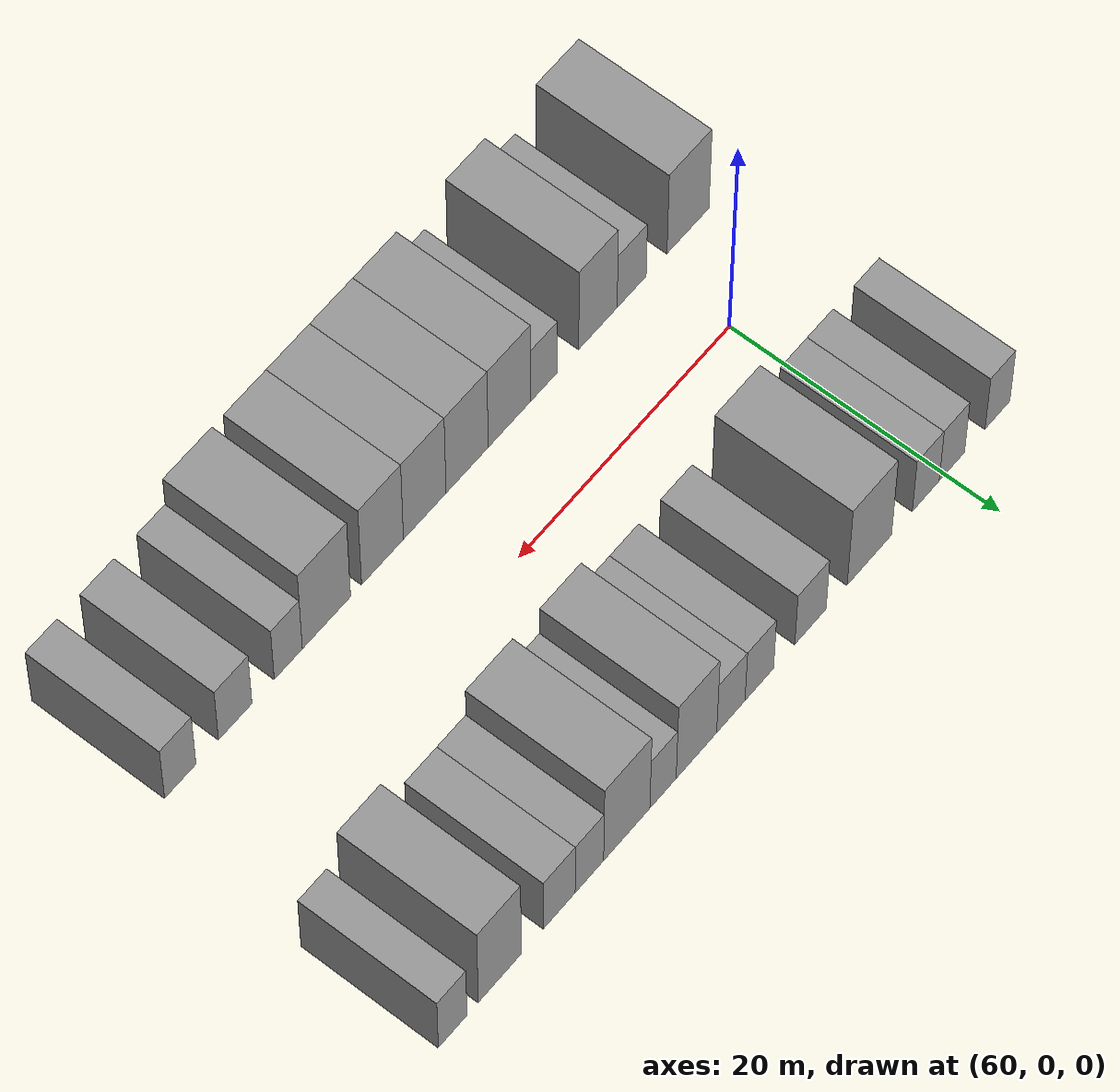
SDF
<sdf version="1.6">
 <world name="default">
  <model name="building_13">
   <static>1</static>
   <pose>54.9431 11.0000 0 0.000000 0.000000 1.570796</pose>
   <link name="link">
    <pose>0 0 3.00 0 0 0</pose>
    <collision name="collision"><geometry><box><size>10.0000 2.4248 6.0000</size></box></geometry></collision>
    <visual name="visual">
     <cast_shadows>0</cast_shadows>
     <geometry><box><size>10.0000 2.4248 6.0000</size></box></geometry>
     <material>
      <script>
       <uri>model://grey_wall/materials/scripts</uri>
       <uri>model://grey_wall/materials/textures</uri>
       <name>vrc/grey_wall</name>
      </script>
     </material>
    </visual>
   </link>
  </model>
  <model name="building_14">
   <static>1</static>
   <pose>59.3850 11.0000 0 0.000000 0.000000 1.570796</pose>
   <link name="link">
    <pose>0 0 3.00 0 0 0</pose>
    <collision name="collision"><geometry><box><size>10.0000 2.4591 6.0000</size></box></geometry></collision>
    <visual name="visual">
     <cast_shadows>0</cast_shadows>
     <geometry><box><size>10.0000 2.4591 6.0000</size></box></geometry>
     <material>
      <script>
       <uri>model://grey_wall/materials/scripts</uri>
       <uri>model://grey_wall/materials/textures</uri>
       <name>vrc/grey_wall</name>
      </script>
     </material>
    </visual>
   </link>
  </model>
  <model name="building_15">
   <static>1</static>
   <pose>61.9111 11.0000 0 0.000000 0.000000 1.570796</pose>
   <link name="link">
    <pose>0 0 3.00 0 0 0</pose>
    <collision name="collision"><geometry><box><size>10.0000 2.5931 6.0000</size></box></geometry></collision>
    <visual name="visual">
     <cast_shadows>0</cast_shadows>
     <geometry><box><size>10.0000 2.5931 6.0000</size></box></geometry>
     <material>
      <script>
       <uri>model://grey_wall/materials/scripts</uri>
       <uri>model://grey_wall/materials/textures</uri>
       <name>vrc/grey_wall</name>
      </script>
     </material>
    </visual>
   </link>
  </model>
  <model name="building_16">
   <static>1</static>
   <pose>67.3301 11.0000 0 0.000000 0.000000 1.570796</pose>
   <link name="link">
    <pose>0 0 4.50 0 0 0</pose>
    <collision name="collision"><geometry><box><size>10.0000 4.2447 9.0000</size></box></geometry></collision>
    <visual name="visual">
     <cast_shadows>0</cast_shadows>
     <geometry><box><size>10.0000 4.2447 9.0000</size></box></geometry>
     <material>
      <script>
       <uri>model://grey_wall/materials/scripts</uri>
       <uri>model://grey_wall/materials/textures</uri>
       <name>vrc/grey_wall</name>
      </script>
     </material>
    </visual>
   </link>
  </model>
  <model name="building_17">
   <static>1</static>
   <pose>72.9326 11.0000 0 0.000000 0.000000 1.570796</pose>
   <link name="link">
    <pose>0 0 3.00 0 0 0</pose>
    <collision name="collision"><geometry><box><size>10.0000 2.9604 6.0000</size></box></geometry></collision>
    <visual name="visual">
     <cast_shadows>0</cast_shadows>
     <geometry><box><size>10.0000 2.9604 6.0000</size></box></geometry>
     <material>
      <script>
       <uri>model://grey_wall/materials/scripts</uri>
       <uri>model://grey_wall/materials/textures</uri>
       <name>vrc/grey_wall</name>
      </script>
     </material>
    </visual>
   </link>
  </model>
  <model name="building_18">
   <static>1</static>
   <pose>77.7498 11.0000 0 0.000000 0.000000 1.570796</pose>
   <link name="link">
    <pose>0 0 3.00 0 0 0</pose>
    <collision name="collision"><geometry><box><size>10.0000 2.6740 6.0000</size></box></geometry></collision>
    <visual name="visual">
     <cast_shadows>0</cast_shadows>
     <geometry><box><size>10.0000 2.6740 6.0000</size></box></geometry>
     <material>
      <script>
       <uri>model://grey_wall/materials/scripts</uri>
       <uri>model://grey_wall/materials/textures</uri>
       <name>vrc/grey_wall</name>
      </script>
     </material>
    </visual>
   </link>
  </model>
  <model name="building_19">
   <static>1</static>
   <pose>80.4077 11.0000 0 0.000000 0.000000 1.570796</pose>
   <link name="link">
    <pose>0 0 3.00 0 0 0</pose>
    <collision name="collision"><geometry><box><size>10.0000 2.6417 6.0000</size></box></geometry></collision>
    <visual name="visual">
     <cast_shadows>0</cast_shadows>
     <geometry><box><size>10.0000 2.6417 6.0000</size></box></geometry>
     <material>
      <script>
       <uri>model://grey_wall/materials/scripts</uri>
       <uri>model://grey_wall/materials/textures</uri>
       <name>vrc/grey_wall</name>
      </script>
     </material>
    </visual>
   </link>
  </model>
  <model name="building_20">
   <static>1</static>
   <pose>83.6070 11.0000 0 0.000000 0.000000 1.570796</pose>
   <link name="link">
    <pose>0 0 4.50 0 0 0</pose>
    <collision name="collision"><geometry><box><size>10.0000 3.7568 9.0000</size></box></geometry></collision>
    <visual name="visual">
     <cast_shadows>0</cast_shadows>
     <geometry><box><size>10.0000 3.7568 9.0000</size></box></geometry>
     <material>
      <script>
       <uri>model://grey_wall/materials/scripts</uri>
       <uri>model://grey_wall/materials/textures</uri>
       <name>vrc/grey_wall</name>
      </script>
     </material>
    </visual>
   </link>
  </model>
  <model name="building_21">
   <static>1</static>
   <pose>86.6971 11.0000 0 0.000000 0.000000 1.570796</pose>
   <link name="link">
    <pose>0 0 3.00 0 0 0</pose>
    <collision name="collision"><geometry><box><size>10.0000 2.4235 6.0000</size></box></geometry></collision>
    <visual name="visual">
     <cast_shadows>0</cast_shadows>
     <geometry><box><size>10.0000 2.4235 6.0000</size></box></geometry>
     <material>
      <script>
       <uri>model://grey_wall/materials/scripts</uri>
       <uri>model://grey_wall/materials/textures</uri>
       <name>vrc/grey_wall</name>
      </script>
     </material>
    </visual>
   </link>
  </model>
  <model name="building_22">
   <static>1</static>
   <pose>90.0248 11.0000 0 0.000000 0.000000 1.570796</pose>
   <link name="link">
    <pose>0 0 4.50 0 0 0</pose>
    <collision name="collision"><geometry><box><size>10.0000 4.2320 9.0000</size></box></geometry></collision>
    <visual name="visual">
     <cast_shadows>0</cast_shadows>
     <geometry><box><size>10.0000 4.2320 9.0000</size></box></geometry>
     <material>
      <script>
       <uri>model://grey_wall/materials/scripts</uri>
       <uri>model://grey_wall/materials/textures</uri>
       <name>vrc/grey_wall</name>
      </script>
     </material>
    </visual>
   </link>
  </model>
  <model name="building_23">
   <static>1</static>
   <pose>93.4346 11.0000 0 0.000000 0.000000 1.570796</pose>
   <link name="link">
    <pose>0 0 3.00 0 0 0</pose>
    <collision name="collision"><geometry><box><size>10.0000 2.5876 6.0000</size></box></geometry></collision>
    <visual name="visual">
     <cast_shadows>0</cast_shadows>
     <geometry><box><size>10.0000 2.5876 6.0000</size></box></geometry>
     <material>
      <script>
       <uri>model://grey_wall/materials/scripts</uri>
       <uri>model://grey_wall/materials/textures</uri>
       <name>vrc/grey_wall</name>
      </script>
     </material>
    </visual>
   </link>
  </model>
  <model name="building_24">
   <static>1</static>
   <pose>96.1664 11.0000 0 0.000000 0.000000 1.570796</pose>
   <link name="link">
    <pose>0 0 3.00 0 0 0</pose>
    <collision name="collision"><geometry><box><size>10.0000 2.8760 6.0000</size></box></geometry></collision>
    <visual name="visual">
     <cast_shadows>0</cast_shadows>
     <geometry><box><size>10.0000 2.8760 6.0000</size></box></geometry>
     <material>
      <script>
       <uri>model://grey_wall/materials/scripts</uri>
       <uri>model://grey_wall/materials/textures</uri>
       <name>vrc/grey_wall</name>
      </script>
     </material>
    </visual>
   </link>
  </model>
  <model name="building_25">
   <static>1</static>
   <pose>101.5281 11.0000 0 0.000000 0.000000 1.570796</pose>
   <link name="link">
    <pose>0 0 4.50 0 0 0</pose>
    <collision name="collision"><geometry><box><size>10.0000 3.8472 9.0000</size></box></geometry></collision>
    <visual name="visual">
     <cast_shadows>0</cast_shadows>
     <geometry><box><size>10.0000 3.8472 9.0000</size></box></geometry>
     <material>
      <script>
       <uri>model://grey_wall/materials/scripts</uri>
       <uri>model://grey_wall/materials/textures</uri>
       <name>vrc/grey_wall</name>
      </script>
     </material>
    </visual>
   </link>
  </model>
  <model name="building_26">
   <static>1</static>
   <pose>105.7245 11.0000 0 0.000000 0.000000 1.570796</pose>
   <link name="link">
    <pose>0 0 3.00 0 0 0</pose>
    <collision name="collision"><geometry><box><size>10.0000 2.5457 6.0000</size></box></geometry></collision>
    <visual name="visual">
     <cast_shadows>0</cast_shadows>
     <geometry><box><size>10.0000 2.5457 6.0000</size></box></geometry>
     <material>
      <script>
       <uri>model://grey_wall/materials/scripts</uri>
       <uri>model://grey_wall/materials/textures</uri>
       <name>vrc/grey_wall</name>
      </script>
     </material>
    </visual>
   </link>
  </model>
  <model name="building_66">
   <static>1</static>
   <pose>56.4374 -11.0000 0 0.000000 0.000000 1.570796</pose>
   <link name="link">
    <pose>0 0 4.50 0 0 0</pose>
    <collision name="collision"><geometry><box><size>10.0000 4.0537 9.0000</size></box></geometry></collision>
    <visual name="visual">
     <cast_shadows>0</cast_shadows>
     <geometry><box><size>10.0000 4.0537 9.0000</size></box></geometry>
     <material>
      <script>
       <uri>model://grey_wall/materials/scripts</uri>
       <uri>model://grey_wall/materials/textures</uri>
       <name>vrc/grey_wall</name>
      </script>
     </material>
    </visual>
   </link>
  </model>
  <model name="building_67">
   <static>1</static>
   <pose>61.8517 -11.0000 0 0.000000 0.000000 1.570796</pose>
   <link name="link">
    <pose>0 0 3.00 0 0 0</pose>
    <collision name="collision"><geometry><box><size>10.0000 2.7749 6.0000</size></box></geometry></collision>
    <visual name="visual">
     <cast_shadows>0</cast_shadows>
     <geometry><box><size>10.0000 2.7749 6.0000</size></box></geometry>
     <material>
      <script>
       <uri>model://grey_wall/materials/scripts</uri>
       <uri>model://grey_wall/materials/textures</uri>
       <name>vrc/grey_wall</name>
      </script>
     </material>
    </visual>
   </link>
  </model>
  <model name="building_68">
   <static>1</static>
   <pose>65.0686 -11.0000 0 0.000000 0.000000 1.570796</pose>
   <link name="link">
    <pose>0 0 4.50 0 0 0</pose>
    <collision name="collision"><geometry><box><size>10.0000 3.6590 9.0000</size></box></geometry></collision>
    <visual name="visual">
     <cast_shadows>0</cast_shadows>
     <geometry><box><size>10.0000 3.6590 9.0000</size></box></geometry>
     <material>
      <script>
       <uri>model://grey_wall/materials/scripts</uri>
       <uri>model://grey_wall/materials/textures</uri>
       <name>vrc/grey_wall</name>
      </script>
     </material>
    </visual>
   </link>
  </model>
  <model name="building_69">
   <static>1</static>
   <pose>70.1582 -11.0000 0 0.000000 0.000000 1.570796</pose>
   <link name="link">
    <pose>0 0 3.00 0 0 0</pose>
    <collision name="collision"><geometry><box><size>10.0000 2.5201 6.0000</size></box></geometry></collision>
    <visual name="visual">
     <cast_shadows>0</cast_shadows>
     <geometry><box><size>10.0000 2.5201 6.0000</size></box></geometry>
     <material>
      <script>
       <uri>model://grey_wall/materials/scripts</uri>
       <uri>model://grey_wall/materials/textures</uri>
       <name>vrc/grey_wall</name>
      </script>
     </material>
    </visual>
   </link>
  </model>
  <model name="building_70">
   <static>1</static>
   <pose>73.4085 -11.0000 0 0.000000 0.000000 1.570796</pose>
   <link name="link">
    <pose>0 0 4.50 0 0 0</pose>
    <collision name="collision"><geometry><box><size>10.0000 3.9804 9.0000</size></box></geometry></collision>
    <visual name="visual">
     <cast_shadows>0</cast_shadows>
     <geometry><box><size>10.0000 3.9804 9.0000</size></box></geometry>
     <material>
      <script>
       <uri>model://grey_wall/materials/scripts</uri>
       <uri>model://grey_wall/materials/textures</uri>
       <name>vrc/grey_wall</name>
      </script>
     </material>
    </visual>
   </link>
  </model>
  <model name="building_71">
   <static>1</static>
   <pose>77.3559 -11.0000 0 0.000000 0.000000 1.570796</pose>
   <link name="link">
    <pose>0 0 4.50 0 0 0</pose>
    <collision name="collision"><geometry><box><size>10.0000 3.9144 9.0000</size></box></geometry></collision>
    <visual name="visual">
     <cast_shadows>0</cast_shadows>
     <geometry><box><size>10.0000 3.9144 9.0000</size></box></geometry>
     <material>
      <script>
       <uri>model://grey_wall/materials/scripts</uri>
       <uri>model://grey_wall/materials/textures</uri>
       <name>vrc/grey_wall</name>
      </script>
     </material>
    </visual>
   </link>
  </model>
  <model name="building_72">
   <static>1</static>
   <pose>81.2780 -11.0000 0 0.000000 0.000000 1.570796</pose>
   <link name="link">
    <pose>0 0 4.50 0 0 0</pose>
    <collision name="collision"><geometry><box><size>10.0000 3.9299 9.0000</size></box></geometry></collision>
    <visual name="visual">
     <cast_shadows>0</cast_shadows>
     <geometry><box><size>10.0000 3.9299 9.0000</size></box></geometry>
     <material>
      <script>
       <uri>model://grey_wall/materials/scripts</uri>
       <uri>model://grey_wall/materials/textures</uri>
       <name>vrc/grey_wall</name>
      </script>
     </material>
    </visual>
   </link>
  </model>
  <model name="building_73">
   <static>1</static>
   <pose>85.1622 -11.0000 0 0.000000 0.000000 1.570796</pose>
   <link name="link">
    <pose>0 0 4.50 0 0 0</pose>
    <collision name="collision"><geometry><box><size>10.0000 3.8385 9.0000</size></box></geometry></collision>
    <visual name="visual">
     <cast_shadows>0</cast_shadows>
     <geometry><box><size>10.0000 3.8385 9.0000</size></box></geometry>
     <material>
      <script>
       <uri>model://grey_wall/materials/scripts</uri>
       <uri>model://grey_wall/materials/textures</uri>
       <name>vrc/grey_wall</name>
      </script>
     </material>
    </visual>
   </link>
  </model>
  <model name="building_74">
   <static>1</static>
   <pose>90.2686 -11.0000 0 0.000000 0.000000 1.570796</pose>
   <link name="link">
    <pose>0 0 4.50 0 0 0</pose>
    <collision name="collision"><geometry><box><size>10.0000 4.3743 9.0000</size></box></geometry></collision>
    <visual name="visual">
     <cast_shadows>0</cast_shadows>
     <geometry><box><size>10.0000 4.3743 9.0000</size></box></geometry>
     <material>
      <script>
       <uri>model://grey_wall/materials/scripts</uri>
       <uri>model://grey_wall/materials/textures</uri>
       <name>vrc/grey_wall</name>
      </script>
     </material>
    </visual>
   </link>
  </model>
  <model name="building_75">
   <static>1</static>
   <pose>93.7228 -11.0000 0 0.000000 0.000000 1.570796</pose>
   <link name="link">
    <pose>0 0 3.00 0 0 0</pose>
    <collision name="collision"><geometry><box><size>10.0000 2.5340 6.0000</size></box></geometry></collision>
    <visual name="visual">
     <cast_shadows>0</cast_shadows>
     <geometry><box><size>10.0000 2.5340 6.0000</size></box></geometry>
     <material>
      <script>
       <uri>model://grey_wall/materials/scripts</uri>
       <uri>model://grey_wall/materials/textures</uri>
       <name>vrc/grey_wall</name>
      </script>
     </material>
    </visual>
   </link>
  </model>
  <model name="building_76">
   <static>1</static>
   <pose>98.4834 -11.0000 0 0.000000 0.000000 1.570796</pose>
   <link name="link">
    <pose>0 0 3.00 0 0 0</pose>
    <collision name="collision"><geometry><box><size>10.0000 2.9871 6.0000</size></box></geometry></collision>
    <visual name="visual">
     <cast_shadows>0</cast_shadows>
     <geometry><box><size>10.0000 2.9871 6.0000</size></box></geometry>
     <material>
      <script>
       <uri>model://grey_wall/materials/scripts</uri>
       <uri>model://grey_wall/materials/textures</uri>
       <name>vrc/grey_wall</name>
      </script>
     </material>
    </visual>
   </link>
  </model>
  <model name="building_77">
   <static>1</static>
   <pose>103.3675 -11.0000 0 0.000000 0.000000 1.570796</pose>
   <link name="link">
    <pose>0 0 3.00 0 0 0</pose>
    <collision name="collision"><geometry><box><size>10.0000 2.7812 6.0000</size></box></geometry></collision>
    <visual name="visual">
     <cast_shadows>0</cast_shadows>
     <geometry><box><size>10.0000 2.7812 6.0000</size></box></geometry>
     <material>
      <script>
       <uri>model://grey_wall/materials/scripts</uri>
       <uri>model://grey_wall/materials/textures</uri>
       <name>vrc/grey_wall</name>
      </script>
     </material>
    </visual>
   </link>
  </model>
 </world>
</sdf>
